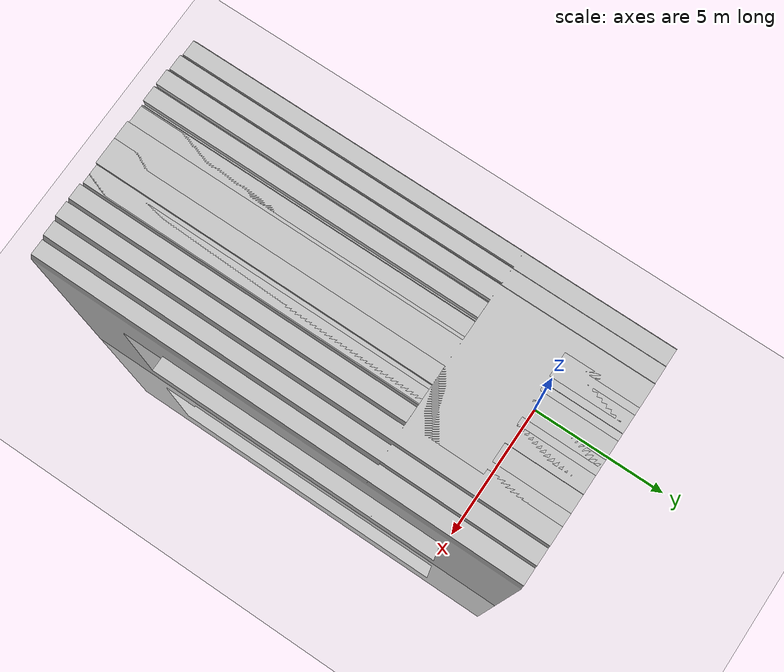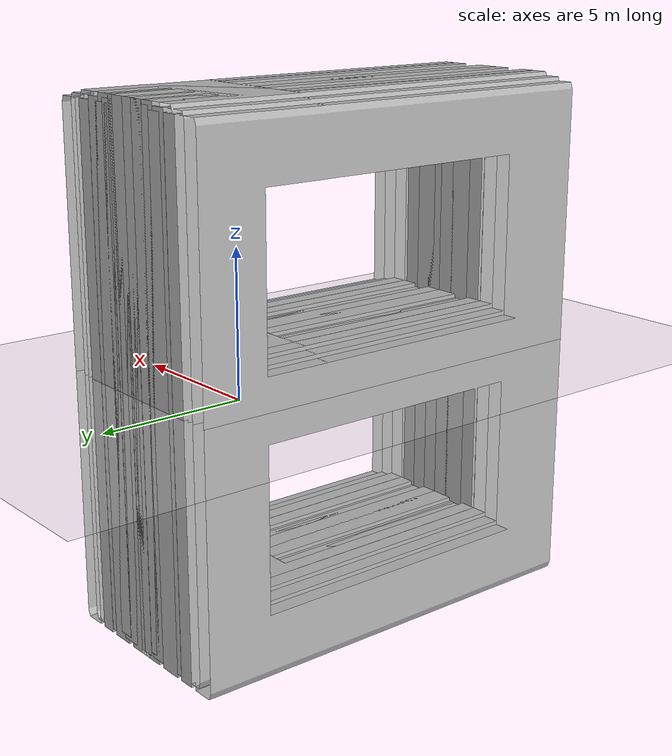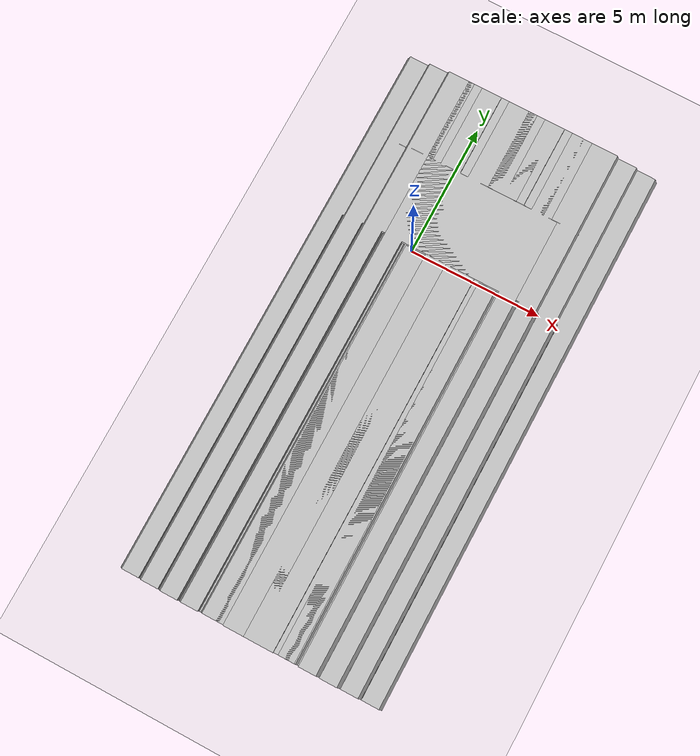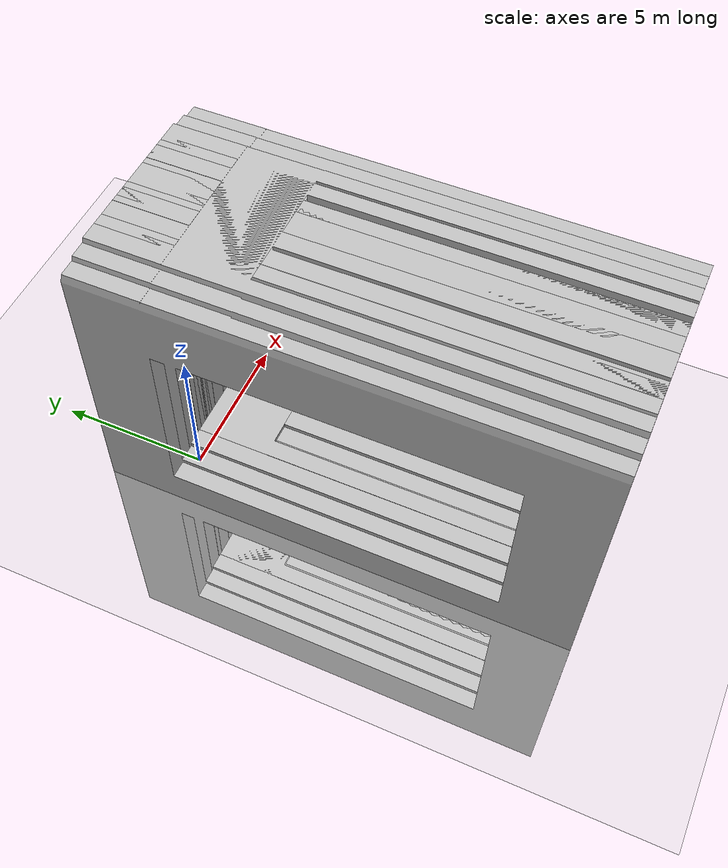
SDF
<?xml version="1.0" ?>
<sdf version="1.4">
  <world name="default">
    <physics type='ode'>
      <gravity>0 0 -9.81</gravity>
      <!-- max step size has to be a multiple of the desired task rate-->
      <max_step_size>0.001</max_step_size>
      <real_time_factor>1</real_time_factor>
    </physics>
    <!-- A global light source -->
    <include>
      <uri>model://sun</uri>
    </include>
    <!-- A ground plane -->
    <include>
      <uri>model://ground_plane</uri>
    </include>

   <!-- first stair starts at 0.8-->

    <include>
      <name>pallet1</name>
      <uri>model://pallet600x1000x140mm</uri>
      <pose>0.8 0 0 0 0 0</pose>
    </include>

    <include>
      <name>pallet2</name>
      <uri>model://pallet600x1000x140mm</uri>
      <pose>1.4 0 0.14 0 0 0 </pose>
    </include>

    <include>
      <name>pallet3</name>
      <uri>model://pallet600x1000x140mm</uri>
      <pose>2.0 0 0.28 0 0 0 </pose>
    </include>

    <include>
      <name>pallet4</name>
      <uri>model://pallet600x1000x140mm</uri>
      <pose>2.6 0 0.28 0 0 0 </pose>
    </include>

    <!-- second stair starts at 3.2-->

    <include>
      <name>pallet5</name>
      <uri>model://pallet600x1000x140mm</uri>
      <pose>3.2 0 0.14 0 0 0</pose>
    </include>

    <include>
      <name>pallet6</name>
      <uri>model://pallet600x1000x140mm</uri>
      <pose>3.8 0 0.0 0 0 0 </pose>
    </include>

  </world>
</sdf>

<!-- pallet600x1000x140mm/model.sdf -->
<sdf version="1.4">
	<model name="pallet600x1000x140mm">
		<static>true</static>
		<link name="link">
			<pose>0 0 0.06 0 0 0</pose>
			<collision name="collision">
				<geometry>
					<mesh>
						<uri>model://pallet480x1000x140mm/mesh/pallet.dae</uri>
						<!-- original size = 1.016 x 0.090678 x 0.090678 m -->
						<!-- final size = 0.6 x 1 x 0.14 m -->
						<scale>0.591 11.028 1.5439</scale>
					</mesh>
				</geometry>
			</collision>
			<visual name="visual">
				<geometry>
					<mesh>
						<uri>model://pallet480x1000x140mm/mesh/pallet.dae</uri>
						<!-- original size = 1.016 x 0.090678 x 0.090678 m -->
						<!-- final size = 0.6 x 1 x 0.14 m -->
						<scale>0.591 11.028 1.5439</scale>
					</mesh>
				</geometry>
			</visual>
		</link>
	</model>
</sdf>
